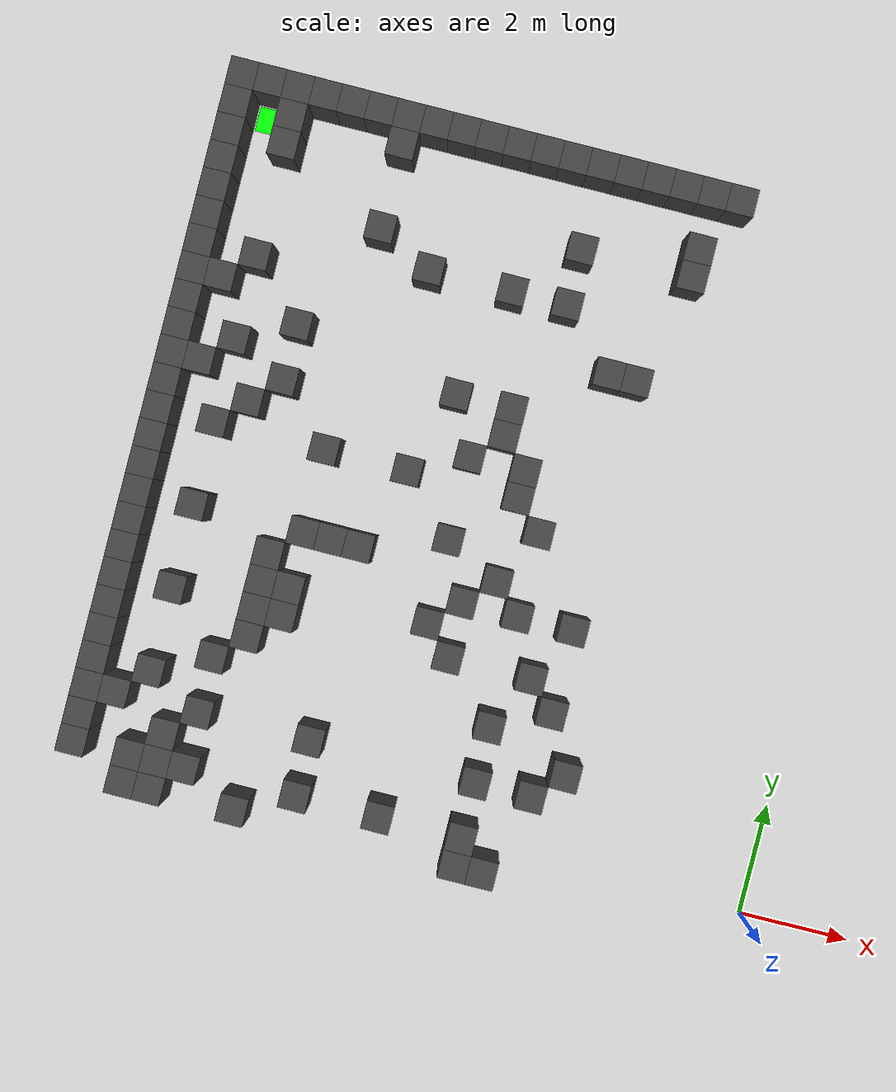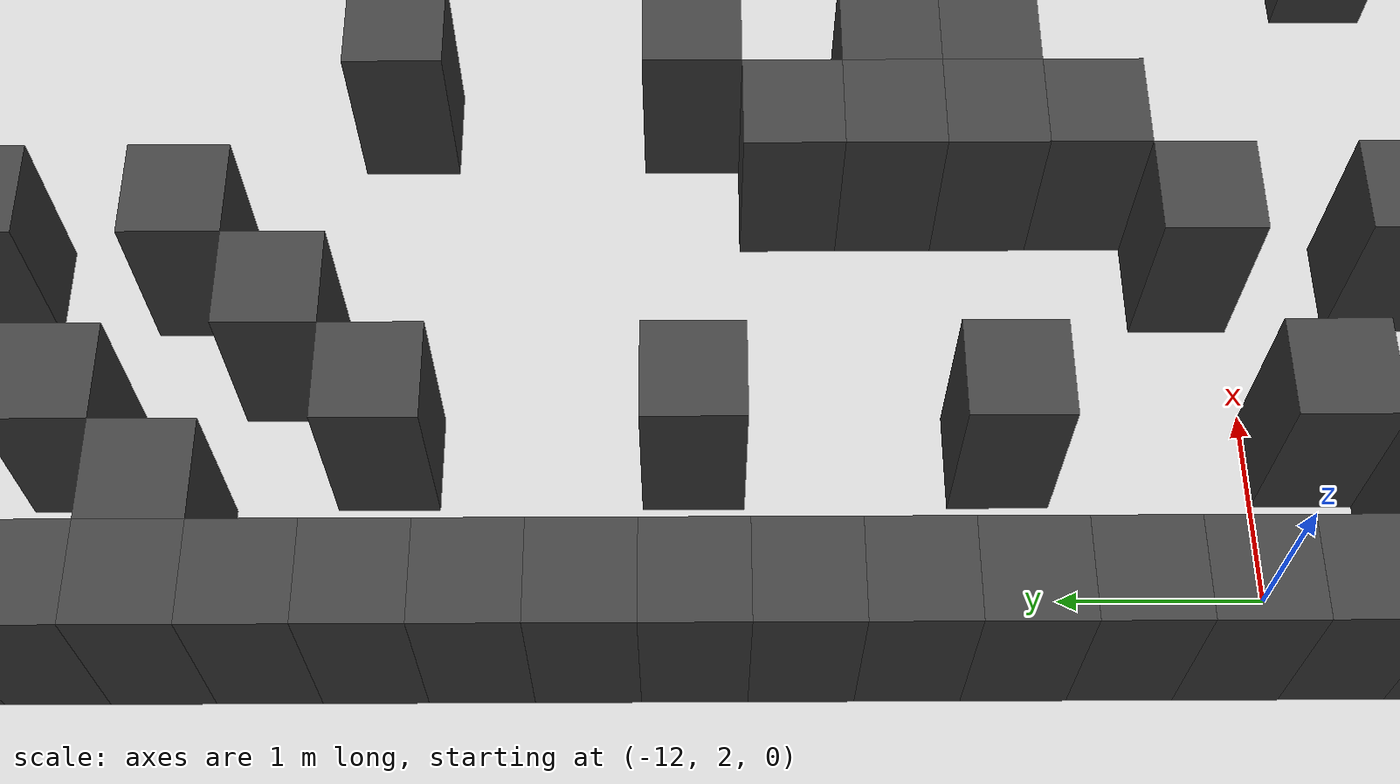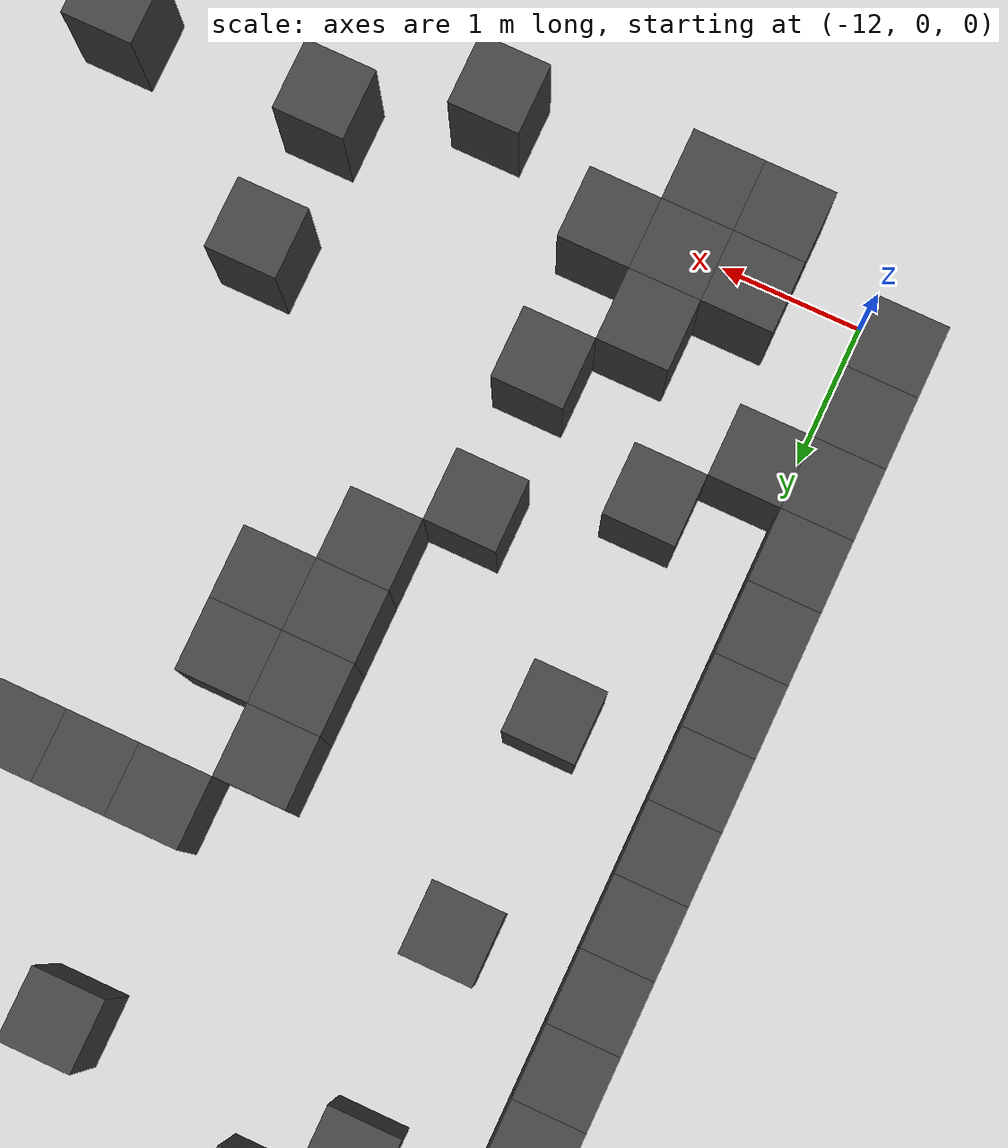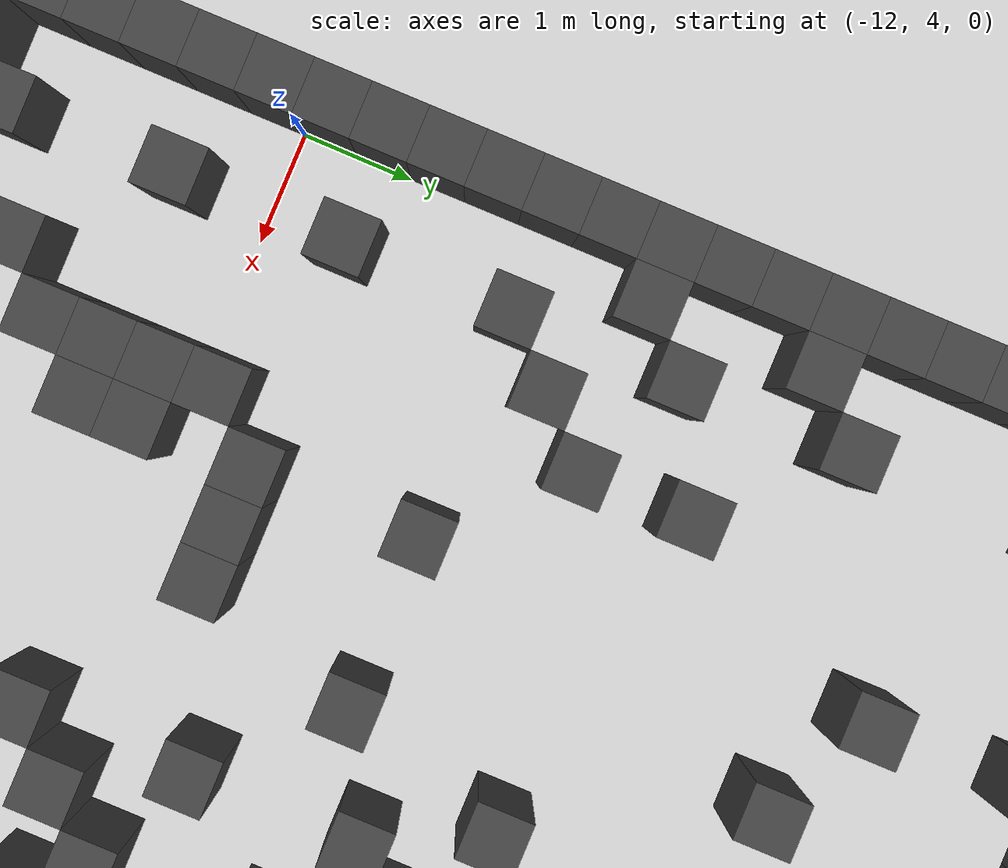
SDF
<sdf version="1.7">
 <world name="map_3200">
  <model name="ground_plane">
   <static>true</static>
   <link name="link">
    <collision name="collision">
     <geometry><plane><normal>0 0 1</normal><size>200 200</size></plane></geometry>
    </collision>
    <visual name="visual">
     <geometry><plane><normal>0 0 1</normal><size>200 200</size></plane></geometry>
     <material><ambient>0.8 0.8 0.8 1</ambient><diffuse>0.8 0.8 0.8 1</diffuse></material>
    </visual>
   </link>
  </model>
  <model name="maze_environment">
   <static>true</static>
   <link name="wall_0">
    <pose>-12.250 12.250 0.500 0 0 0</pose>
    <collision name="col"><geometry><box><size>0.5 0.5 1.0</size></box></geometry></collision>
    <visual name="vis">
     <geometry><box><size>0.5 0.5 1.0</size></box></geometry>
     <material><ambient>0.15 0.15 0.15 1</ambient><diffuse>0.25 0.25 0.25 1</diffuse></material>
    </visual>
   </link>
   <link name="wall_1">
    <pose>-11.750 12.250 0.500 0 0 0</pose>
    <collision name="col"><geometry><box><size>0.5 0.5 1.0</size></box></geometry></collision>
    <visual name="vis">
     <geometry><box><size>0.5 0.5 1.0</size></box></geometry>
     <material><ambient>0.15 0.15 0.15 1</ambient><diffuse>0.25 0.25 0.25 1</diffuse></material>
    </visual>
   </link>
   <link name="wall_2">
    <pose>-11.250 12.250 0.500 0 0 0</pose>
    <collision name="col"><geometry><box><size>0.5 0.5 1.0</size></box></geometry></collision>
    <visual name="vis">
     <geometry><box><size>0.5 0.5 1.0</size></box></geometry>
     <material><ambient>0.15 0.15 0.15 1</ambient><diffuse>0.25 0.25 0.25 1</diffuse></material>
    </visual>
   </link>
   <link name="wall_3">
    <pose>-10.750 12.250 0.500 0 0 0</pose>
    <collision name="col"><geometry><box><size>0.5 0.5 1.0</size></box></geometry></collision>
    <visual name="vis">
     <geometry><box><size>0.5 0.5 1.0</size></box></geometry>
     <material><ambient>0.15 0.15 0.15 1</ambient><diffuse>0.25 0.25 0.25 1</diffuse></material>
    </visual>
   </link>
   <link name="wall_4">
    <pose>-10.250 12.250 0.500 0 0 0</pose>
    <collision name="col"><geometry><box><size>0.5 0.5 1.0</size></box></geometry></collision>
    <visual name="vis">
     <geometry><box><size>0.5 0.5 1.0</size></box></geometry>
     <material><ambient>0.15 0.15 0.15 1</ambient><diffuse>0.25 0.25 0.25 1</diffuse></material>
    </visual>
   </link>
   <link name="wall_5">
    <pose>-9.750 12.250 0.500 0 0 0</pose>
    <collision name="col"><geometry><box><size>0.5 0.5 1.0</size></box></geometry></collision>
    <visual name="vis">
     <geometry><box><size>0.5 0.5 1.0</size></box></geometry>
     <material><ambient>0.15 0.15 0.15 1</ambient><diffuse>0.25 0.25 0.25 1</diffuse></material>
    </visual>
   </link>
   <link name="wall_6">
    <pose>-9.250 12.250 0.500 0 0 0</pose>
    <collision name="col"><geometry><box><size>0.5 0.5 1.0</size></box></geometry></collision>
    <visual name="vis">
     <geometry><box><size>0.5 0.5 1.0</size></box></geometry>
     <material><ambient>0.15 0.15 0.15 1</ambient><diffuse>0.25 0.25 0.25 1</diffuse></material>
    </visual>
   </link>
   <link name="wall_7">
    <pose>-8.750 12.250 0.500 0 0 0</pose>
    <collision name="col"><geometry><box><size>0.5 0.5 1.0</size></box></geometry></collision>
    <visual name="vis">
     <geometry><box><size>0.5 0.5 1.0</size></box></geometry>
     <material><ambient>0.15 0.15 0.15 1</ambient><diffuse>0.25 0.25 0.25 1</diffuse></material>
    </visual>
   </link>
   <link name="wall_8">
    <pose>-8.250 12.250 0.500 0 0 0</pose>
    <collision name="col"><geometry><box><size>0.5 0.5 1.0</size></box></geometry></collision>
    <visual name="vis">
     <geometry><box><size>0.5 0.5 1.0</size></box></geometry>
     <material><ambient>0.15 0.15 0.15 1</ambient><diffuse>0.25 0.25 0.25 1</diffuse></material>
    </visual>
   </link>
   <link name="wall_9">
    <pose>-7.750 12.250 0.500 0 0 0</pose>
    <collision name="col"><geometry><box><size>0.5 0.5 1.0</size></box></geometry></collision>
    <visual name="vis">
     <geometry><box><size>0.5 0.5 1.0</size></box></geometry>
     <material><ambient>0.15 0.15 0.15 1</ambient><diffuse>0.25 0.25 0.25 1</diffuse></material>
    </visual>
   </link>
   <link name="wall_10">
    <pose>-7.250 12.250 0.500 0 0 0</pose>
    <collision name="col"><geometry><box><size>0.5 0.5 1.0</size></box></geometry></collision>
    <visual name="vis">
     <geometry><box><size>0.5 0.5 1.0</size></box></geometry>
     <material><ambient>0.15 0.15 0.15 1</ambient><diffuse>0.25 0.25 0.25 1</diffuse></material>
    </visual>
   </link>
   <link name="wall_11">
    <pose>-6.750 12.250 0.500 0 0 0</pose>
    <collision name="col"><geometry><box><size>0.5 0.5 1.0</size></box></geometry></collision>
    <visual name="vis">
     <geometry><box><size>0.5 0.5 1.0</size></box></geometry>
     <material><ambient>0.15 0.15 0.15 1</ambient><diffuse>0.25 0.25 0.25 1</diffuse></material>
    </visual>
   </link>
   <link name="wall_12">
    <pose>-6.250 12.250 0.500 0 0 0</pose>
    <collision name="col"><geometry><box><size>0.5 0.5 1.0</size></box></geometry></collision>
    <visual name="vis">
     <geometry><box><size>0.5 0.5 1.0</size></box></geometry>
     <material><ambient>0.15 0.15 0.15 1</ambient><diffuse>0.25 0.25 0.25 1</diffuse></material>
    </visual>
   </link>
   <link name="wall_13">
    <pose>-5.750 12.250 0.500 0 0 0</pose>
    <collision name="col"><geometry><box><size>0.5 0.5 1.0</size></box></geometry></collision>
    <visual name="vis">
     <geometry><box><size>0.5 0.5 1.0</size></box></geometry>
     <material><ambient>0.15 0.15 0.15 1</ambient><diffuse>0.25 0.25 0.25 1</diffuse></material>
    </visual>
   </link>
   <link name="wall_14">
    <pose>-5.250 12.250 0.500 0 0 0</pose>
    <collision name="col"><geometry><box><size>0.5 0.5 1.0</size></box></geometry></collision>
    <visual name="vis">
     <geometry><box><size>0.5 0.5 1.0</size></box></geometry>
     <material><ambient>0.15 0.15 0.15 1</ambient><diffuse>0.25 0.25 0.25 1</diffuse></material>
    </visual>
   </link>
   <link name="wall_15">
    <pose>-4.750 12.250 0.500 0 0 0</pose>
    <collision name="col"><geometry><box><size>0.5 0.5 1.0</size></box></geometry></collision>
    <visual name="vis">
     <geometry><box><size>0.5 0.5 1.0</size></box></geometry>
     <material><ambient>0.15 0.15 0.15 1</ambient><diffuse>0.25 0.25 0.25 1</diffuse></material>
    </visual>
   </link>
   <link name="wall_16">
    <pose>-4.250 12.250 0.500 0 0 0</pose>
    <collision name="col"><geometry><box><size>0.5 0.5 1.0</size></box></geometry></collision>
    <visual name="vis">
     <geometry><box><size>0.5 0.5 1.0</size></box></geometry>
     <material><ambient>0.15 0.15 0.15 1</ambient><diffuse>0.25 0.25 0.25 1</diffuse></material>
    </visual>
   </link>
   <link name="wall_17">
    <pose>-3.750 12.250 0.500 0 0 0</pose>
    <collision name="col"><geometry><box><size>0.5 0.5 1.0</size></box></geometry></collision>
    <visual name="vis">
     <geometry><box><size>0.5 0.5 1.0</size></box></geometry>
     <material><ambient>0.15 0.15 0.15 1</ambient><diffuse>0.25 0.25 0.25 1</diffuse></material>
    </visual>
   </link>
   <link name="wall_18">
    <pose>-3.250 12.250 0.500 0 0 0</pose>
    <collision name="col"><geometry><box><size>0.5 0.5 1.0</size></box></geometry></collision>
    <visual name="vis">
     <geometry><box><size>0.5 0.5 1.0</size></box></geometry>
     <material><ambient>0.15 0.15 0.15 1</ambient><diffuse>0.25 0.25 0.25 1</diffuse></material>
    </visual>
   </link>
   <link name="wall_50">
    <pose>-12.250 11.750 0.500 0 0 0</pose>
    <collision name="col"><geometry><box><size>0.5 0.5 1.0</size></box></geometry></collision>
    <visual name="vis">
     <geometry><box><size>0.5 0.5 1.0</size></box></geometry>
     <material><ambient>0.15 0.15 0.15 1</ambient><diffuse>0.25 0.25 0.25 1</diffuse></material>
    </visual>
   </link>
   <link name="wall_51">
    <pose>-11.250 11.750 0.500 0 0 0</pose>
    <collision name="col"><geometry><box><size>0.5 0.5 1.0</size></box></geometry></collision>
    <visual name="vis">
     <geometry><box><size>0.5 0.5 1.0</size></box></geometry>
     <material><ambient>0.15 0.15 0.15 1</ambient><diffuse>0.25 0.25 0.25 1</diffuse></material>
    </visual>
   </link>
   <link name="wall_52">
    <pose>-9.250 11.750 0.500 0 0 0</pose>
    <collision name="col"><geometry><box><size>0.5 0.5 1.0</size></box></geometry></collision>
    <visual name="vis">
     <geometry><box><size>0.5 0.5 1.0</size></box></geometry>
     <material><ambient>0.15 0.15 0.15 1</ambient><diffuse>0.25 0.25 0.25 1</diffuse></material>
    </visual>
   </link>
   <link name="wall_61">
    <pose>-12.250 11.250 0.500 0 0 0</pose>
    <collision name="col"><geometry><box><size>0.5 0.5 1.0</size></box></geometry></collision>
    <visual name="vis">
     <geometry><box><size>0.5 0.5 1.0</size></box></geometry>
     <material><ambient>0.15 0.15 0.15 1</ambient><diffuse>0.25 0.25 0.25 1</diffuse></material>
    </visual>
   </link>
   <link name="wall_62">
    <pose>-11.250 11.250 0.500 0 0 0</pose>
    <collision name="col"><geometry><box><size>0.5 0.5 1.0</size></box></geometry></collision>
    <visual name="vis">
     <geometry><box><size>0.5 0.5 1.0</size></box></geometry>
     <material><ambient>0.15 0.15 0.15 1</ambient><diffuse>0.25 0.25 0.25 1</diffuse></material>
    </visual>
   </link>
   <link name="wall_63">
    <pose>-3.750 11.250 0.500 0 0 0</pose>
    <collision name="col"><geometry><box><size>0.5 0.5 1.0</size></box></geometry></collision>
    <visual name="vis">
     <geometry><box><size>0.5 0.5 1.0</size></box></geometry>
     <material><ambient>0.15 0.15 0.15 1</ambient><diffuse>0.25 0.25 0.25 1</diffuse></material>
    </visual>
   </link>
   <link name="wall_68">
    <pose>-12.250 10.750 0.500 0 0 0</pose>
    <collision name="col"><geometry><box><size>0.5 0.5 1.0</size></box></geometry></collision>
    <visual name="vis">
     <geometry><box><size>0.5 0.5 1.0</size></box></geometry>
     <material><ambient>0.15 0.15 0.15 1</ambient><diffuse>0.25 0.25 0.25 1</diffuse></material>
    </visual>
   </link>
   <link name="wall_69">
    <pose>-5.750 10.750 0.500 0 0 0</pose>
    <collision name="col"><geometry><box><size>0.5 0.5 1.0</size></box></geometry></collision>
    <visual name="vis">
     <geometry><box><size>0.5 0.5 1.0</size></box></geometry>
     <material><ambient>0.15 0.15 0.15 1</ambient><diffuse>0.25 0.25 0.25 1</diffuse></material>
    </visual>
   </link>
   <link name="wall_70">
    <pose>-3.750 10.750 0.500 0 0 0</pose>
    <collision name="col"><geometry><box><size>0.5 0.5 1.0</size></box></geometry></collision>
    <visual name="vis">
     <geometry><box><size>0.5 0.5 1.0</size></box></geometry>
     <material><ambient>0.15 0.15 0.15 1</ambient><diffuse>0.25 0.25 0.25 1</diffuse></material>
    </visual>
   </link>
   <link name="wall_81">
    <pose>-12.250 10.250 0.500 0 0 0</pose>
    <collision name="col"><geometry><box><size>0.5 0.5 1.0</size></box></geometry></collision>
    <visual name="vis">
     <geometry><box><size>0.5 0.5 1.0</size></box></geometry>
     <material><ambient>0.15 0.15 0.15 1</ambient><diffuse>0.25 0.25 0.25 1</diffuse></material>
    </visual>
   </link>
   <link name="wall_82">
    <pose>-9.250 10.250 0.500 0 0 0</pose>
    <collision name="col"><geometry><box><size>0.5 0.5 1.0</size></box></geometry></collision>
    <visual name="vis">
     <geometry><box><size>0.5 0.5 1.0</size></box></geometry>
     <material><ambient>0.15 0.15 0.15 1</ambient><diffuse>0.25 0.25 0.25 1</diffuse></material>
    </visual>
   </link>
   <link name="wall_85">
    <pose>-12.250 9.750 0.500 0 0 0</pose>
    <collision name="col"><geometry><box><size>0.5 0.5 1.0</size></box></geometry></collision>
    <visual name="vis">
     <geometry><box><size>0.5 0.5 1.0</size></box></geometry>
     <material><ambient>0.15 0.15 0.15 1</ambient><diffuse>0.25 0.25 0.25 1</diffuse></material>
    </visual>
   </link>
   <link name="wall_86">
    <pose>-8.250 9.750 0.500 0 0 0</pose>
    <collision name="col"><geometry><box><size>0.5 0.5 1.0</size></box></geometry></collision>
    <visual name="vis">
     <geometry><box><size>0.5 0.5 1.0</size></box></geometry>
     <material><ambient>0.15 0.15 0.15 1</ambient><diffuse>0.25 0.25 0.25 1</diffuse></material>
    </visual>
   </link>
   <link name="wall_87">
    <pose>-6.750 9.750 0.500 0 0 0</pose>
    <collision name="col"><geometry><box><size>0.5 0.5 1.0</size></box></geometry></collision>
    <visual name="vis">
     <geometry><box><size>0.5 0.5 1.0</size></box></geometry>
     <material><ambient>0.15 0.15 0.15 1</ambient><diffuse>0.25 0.25 0.25 1</diffuse></material>
    </visual>
   </link>
   <link name="wall_88">
    <pose>-5.750 9.750 0.500 0 0 0</pose>
    <collision name="col"><geometry><box><size>0.5 0.5 1.0</size></box></geometry></collision>
    <visual name="vis">
     <geometry><box><size>0.5 0.5 1.0</size></box></geometry>
     <material><ambient>0.15 0.15 0.15 1</ambient><diffuse>0.25 0.25 0.25 1</diffuse></material>
    </visual>
   </link>
   <link name="wall_96">
    <pose>-12.250 9.250 0.500 0 0 0</pose>
    <collision name="col"><geometry><box><size>0.5 0.5 1.0</size></box></geometry></collision>
    <visual name="vis">
     <geometry><box><size>0.5 0.5 1.0</size></box></geometry>
     <material><ambient>0.15 0.15 0.15 1</ambient><diffuse>0.25 0.25 0.25 1</diffuse></material>
    </visual>
   </link>
   <link name="wall_97">
    <pose>-11.250 9.250 0.500 0 0 0</pose>
    <collision name="col"><geometry><box><size>0.5 0.5 1.0</size></box></geometry></collision>
    <visual name="vis">
     <geometry><box><size>0.5 0.5 1.0</size></box></geometry>
     <material><ambient>0.15 0.15 0.15 1</ambient><diffuse>0.25 0.25 0.25 1</diffuse></material>
    </visual>
   </link>
   <link name="wall_106">
    <pose>-12.250 8.750 0.500 0 0 0</pose>
    <collision name="col"><geometry><box><size>0.5 0.5 1.0</size></box></geometry></collision>
    <visual name="vis">
     <geometry><box><size>0.5 0.5 1.0</size></box></geometry>
     <material><ambient>0.15 0.15 0.15 1</ambient><diffuse>0.25 0.25 0.25 1</diffuse></material>
    </visual>
   </link>
   <link name="wall_107">
    <pose>-11.750 8.750 0.500 0 0 0</pose>
    <collision name="col"><geometry><box><size>0.5 0.5 1.0</size></box></geometry></collision>
    <visual name="vis">
     <geometry><box><size>0.5 0.5 1.0</size></box></geometry>
     <material><ambient>0.15 0.15 0.15 1</ambient><diffuse>0.25 0.25 0.25 1</diffuse></material>
    </visual>
   </link>
   <link name="wall_108">
    <pose>-4.750 8.750 0.500 0 0 0</pose>
    <collision name="col"><geometry><box><size>0.5 0.5 1.0</size></box></geometry></collision>
    <visual name="vis">
     <geometry><box><size>0.5 0.5 1.0</size></box></geometry>
     <material><ambient>0.15 0.15 0.15 1</ambient><diffuse>0.25 0.25 0.25 1</diffuse></material>
    </visual>
   </link>
   <link name="wall_109">
    <pose>-4.250 8.750 0.500 0 0 0</pose>
    <collision name="col"><geometry><box><size>0.5 0.5 1.0</size></box></geometry></collision>
    <visual name="vis">
     <geometry><box><size>0.5 0.5 1.0</size></box></geometry>
     <material><ambient>0.15 0.15 0.15 1</ambient><diffuse>0.25 0.25 0.25 1</diffuse></material>
    </visual>
   </link>
   <link name="wall_115">
    <pose>-12.250 8.250 0.500 0 0 0</pose>
    <collision name="col"><geometry><box><size>0.5 0.5 1.0</size></box></geometry></collision>
    <visual name="vis">
     <geometry><box><size>0.5 0.5 1.0</size></box></geometry>
     <material><ambient>0.15 0.15 0.15 1</ambient><diffuse>0.25 0.25 0.25 1</diffuse></material>
    </visual>
   </link>
   <link name="wall_116">
    <pose>-10.250 8.250 0.500 0 0 0</pose>
    <collision name="col"><geometry><box><size>0.5 0.5 1.0</size></box></geometry></collision>
    <visual name="vis">
     <geometry><box><size>0.5 0.5 1.0</size></box></geometry>
     <material><ambient>0.15 0.15 0.15 1</ambient><diffuse>0.25 0.25 0.25 1</diffuse></material>
    </visual>
   </link>
   <link name="wall_124">
    <pose>-12.250 7.750 0.500 0 0 0</pose>
    <collision name="col"><geometry><box><size>0.5 0.5 1.0</size></box></geometry></collision>
    <visual name="vis">
     <geometry><box><size>0.5 0.5 1.0</size></box></geometry>
     <material><ambient>0.15 0.15 0.15 1</ambient><diffuse>0.25 0.25 0.25 1</diffuse></material>
    </visual>
   </link>
   <link name="wall_125">
    <pose>-11.250 7.750 0.500 0 0 0</pose>
    <collision name="col"><geometry><box><size>0.5 0.5 1.0</size></box></geometry></collision>
    <visual name="vis">
     <geometry><box><size>0.5 0.5 1.0</size></box></geometry>
     <material><ambient>0.15 0.15 0.15 1</ambient><diffuse>0.25 0.25 0.25 1</diffuse></material>
    </visual>
   </link>
   <link name="wall_126">
    <pose>-7.250 7.750 0.500 0 0 0</pose>
    <collision name="col"><geometry><box><size>0.5 0.5 1.0</size></box></geometry></collision>
    <visual name="vis">
     <geometry><box><size>0.5 0.5 1.0</size></box></geometry>
     <material><ambient>0.15 0.15 0.15 1</ambient><diffuse>0.25 0.25 0.25 1</diffuse></material>
    </visual>
   </link>
   <link name="wall_127">
    <pose>-6.250 7.750 0.500 0 0 0</pose>
    <collision name="col"><geometry><box><size>0.5 0.5 1.0</size></box></geometry></collision>
    <visual name="vis">
     <geometry><box><size>0.5 0.5 1.0</size></box></geometry>
     <material><ambient>0.15 0.15 0.15 1</ambient><diffuse>0.25 0.25 0.25 1</diffuse></material>
    </visual>
   </link>
   <link name="wall_132">
    <pose>-12.250 7.250 0.500 0 0 0</pose>
    <collision name="col"><geometry><box><size>0.5 0.5 1.0</size></box></geometry></collision>
    <visual name="vis">
     <geometry><box><size>0.5 0.5 1.0</size></box></geometry>
     <material><ambient>0.15 0.15 0.15 1</ambient><diffuse>0.25 0.25 0.25 1</diffuse></material>
    </visual>
   </link>
   <link name="wall_133">
    <pose>-11.750 7.250 0.500 0 0 0</pose>
    <collision name="col"><geometry><box><size>0.5 0.5 1.0</size></box></geometry></collision>
    <visual name="vis">
     <geometry><box><size>0.5 0.5 1.0</size></box></geometry>
     <material><ambient>0.15 0.15 0.15 1</ambient><diffuse>0.25 0.25 0.25 1</diffuse></material>
    </visual>
   </link>
   <link name="wall_134">
    <pose>-10.250 7.250 0.500 0 0 0</pose>
    <collision name="col"><geometry><box><size>0.5 0.5 1.0</size></box></geometry></collision>
    <visual name="vis">
     <geometry><box><size>0.5 0.5 1.0</size></box></geometry>
     <material><ambient>0.15 0.15 0.15 1</ambient><diffuse>0.25 0.25 0.25 1</diffuse></material>
    </visual>
   </link>
   <link name="wall_135">
    <pose>-6.250 7.250 0.500 0 0 0</pose>
    <collision name="col"><geometry><box><size>0.5 0.5 1.0</size></box></geometry></collision>
    <visual name="vis">
     <geometry><box><size>0.5 0.5 1.0</size></box></geometry>
     <material><ambient>0.15 0.15 0.15 1</ambient><diffuse>0.25 0.25 0.25 1</diffuse></material>
    </visual>
   </link>
   <link name="wall_141">
    <pose>-12.250 6.750 0.500 0 0 0</pose>
    <collision name="col"><geometry><box><size>0.5 0.5 1.0</size></box></geometry></collision>
    <visual name="vis">
     <geometry><box><size>0.5 0.5 1.0</size></box></geometry>
     <material><ambient>0.15 0.15 0.15 1</ambient><diffuse>0.25 0.25 0.25 1</diffuse></material>
    </visual>
   </link>
   <link name="wall_142">
    <pose>-10.750 6.750 0.500 0 0 0</pose>
    <collision name="col"><geometry><box><size>0.5 0.5 1.0</size></box></geometry></collision>
    <visual name="vis">
     <geometry><box><size>0.5 0.5 1.0</size></box></geometry>
     <material><ambient>0.15 0.15 0.15 1</ambient><diffuse>0.25 0.25 0.25 1</diffuse></material>
    </visual>
   </link>
   <link name="wall_143">
    <pose>-6.750 6.750 0.500 0 0 0</pose>
    <collision name="col"><geometry><box><size>0.5 0.5 1.0</size></box></geometry></collision>
    <visual name="vis">
     <geometry><box><size>0.5 0.5 1.0</size></box></geometry>
     <material><ambient>0.15 0.15 0.15 1</ambient><diffuse>0.25 0.25 0.25 1</diffuse></material>
    </visual>
   </link>
   <link name="wall_144">
    <pose>-5.750 6.750 0.500 0 0 0</pose>
    <collision name="col"><geometry><box><size>0.5 0.5 1.0</size></box></geometry></collision>
    <visual name="vis">
     <geometry><box><size>0.5 0.5 1.0</size></box></geometry>
     <material><ambient>0.15 0.15 0.15 1</ambient><diffuse>0.25 0.25 0.25 1</diffuse></material>
    </visual>
   </link>
   <link name="wall_151">
    <pose>-12.250 6.250 0.500 0 0 0</pose>
    <collision name="col"><geometry><box><size>0.5 0.5 1.0</size></box></geometry></collision>
    <visual name="vis">
     <geometry><box><size>0.5 0.5 1.0</size></box></geometry>
     <material><ambient>0.15 0.15 0.15 1</ambient><diffuse>0.25 0.25 0.25 1</diffuse></material>
    </visual>
   </link>
   <link name="wall_152">
    <pose>-11.250 6.250 0.500 0 0 0</pose>
    <collision name="col"><geometry><box><size>0.5 0.5 1.0</size></box></geometry></collision>
    <visual name="vis">
     <geometry><box><size>0.5 0.5 1.0</size></box></geometry>
     <material><ambient>0.15 0.15 0.15 1</ambient><diffuse>0.25 0.25 0.25 1</diffuse></material>
    </visual>
   </link>
   <link name="wall_153">
    <pose>-9.250 6.250 0.500 0 0 0</pose>
    <collision name="col"><geometry><box><size>0.5 0.5 1.0</size></box></geometry></collision>
    <visual name="vis">
     <geometry><box><size>0.5 0.5 1.0</size></box></geometry>
     <material><ambient>0.15 0.15 0.15 1</ambient><diffuse>0.25 0.25 0.25 1</diffuse></material>
    </visual>
   </link>
   <link name="wall_154">
    <pose>-7.750 6.250 0.500 0 0 0</pose>
    <collision name="col"><geometry><box><size>0.5 0.5 1.0</size></box></geometry></collision>
    <visual name="vis">
     <geometry><box><size>0.5 0.5 1.0</size></box></geometry>
     <material><ambient>0.15 0.15 0.15 1</ambient><diffuse>0.25 0.25 0.25 1</diffuse></material>
    </visual>
   </link>
   <link name="wall_155">
    <pose>-5.750 6.250 0.500 0 0 0</pose>
    <collision name="col"><geometry><box><size>0.5 0.5 1.0</size></box></geometry></collision>
    <visual name="vis">
     <geometry><box><size>0.5 0.5 1.0</size></box></geometry>
     <material><ambient>0.15 0.15 0.15 1</ambient><diffuse>0.25 0.25 0.25 1</diffuse></material>
    </visual>
   </link>
   <link name="wall_161">
    <pose>-12.250 5.750 0.500 0 0 0</pose>
    <collision name="col"><geometry><box><size>0.5 0.5 1.0</size></box></geometry></collision>
    <visual name="vis">
     <geometry><box><size>0.5 0.5 1.0</size></box></geometry>
     <material><ambient>0.15 0.15 0.15 1</ambient><diffuse>0.25 0.25 0.25 1</diffuse></material>
    </visual>
   </link>
   <link name="wall_162">
    <pose>-5.250 5.750 0.500 0 0 0</pose>
    <collision name="col"><geometry><box><size>0.5 0.5 1.0</size></box></geometry></collision>
    <visual name="vis">
     <geometry><box><size>0.5 0.5 1.0</size></box></geometry>
     <material><ambient>0.15 0.15 0.15 1</ambient><diffuse>0.25 0.25 0.25 1</diffuse></material>
    </visual>
   </link>
   <link name="wall_166">
    <pose>-12.250 5.250 0.500 0 0 0</pose>
    <collision name="col"><geometry><box><size>0.5 0.5 1.0</size></box></geometry></collision>
    <visual name="vis">
     <geometry><box><size>0.5 0.5 1.0</size></box></geometry>
     <material><ambient>0.15 0.15 0.15 1</ambient><diffuse>0.25 0.25 0.25 1</diffuse></material>
    </visual>
   </link>
   <link name="wall_167">
    <pose>-6.750 5.250 0.500 0 0 0</pose>
    <collision name="col"><geometry><box><size>0.5 0.5 1.0</size></box></geometry></collision>
    <visual name="vis">
     <geometry><box><size>0.5 0.5 1.0</size></box></geometry>
     <material><ambient>0.15 0.15 0.15 1</ambient><diffuse>0.25 0.25 0.25 1</diffuse></material>
    </visual>
   </link>
   <link name="wall_174">
    <pose>-12.250 4.750 0.500 0 0 0</pose>
    <collision name="col"><geometry><box><size>0.5 0.5 1.0</size></box></geometry></collision>
    <visual name="vis">
     <geometry><box><size>0.5 0.5 1.0</size></box></geometry>
     <material><ambient>0.15 0.15 0.15 1</ambient><diffuse>0.25 0.25 0.25 1</diffuse></material>
    </visual>
   </link>
   <link name="wall_175">
    <pose>-11.250 4.750 0.500 0 0 0</pose>
    <collision name="col"><geometry><box><size>0.5 0.5 1.0</size></box></geometry></collision>
    <visual name="vis">
     <geometry><box><size>0.5 0.5 1.0</size></box></geometry>
     <material><ambient>0.15 0.15 0.15 1</ambient><diffuse>0.25 0.25 0.25 1</diffuse></material>
    </visual>
   </link>
   <link name="wall_176">
    <pose>-9.250 4.750 0.500 0 0 0</pose>
    <collision name="col"><geometry><box><size>0.5 0.5 1.0</size></box></geometry></collision>
    <visual name="vis">
     <geometry><box><size>0.5 0.5 1.0</size></box></geometry>
     <material><ambient>0.15 0.15 0.15 1</ambient><diffuse>0.25 0.25 0.25 1</diffuse></material>
    </visual>
   </link>
   <link name="wall_177">
    <pose>-8.750 4.750 0.500 0 0 0</pose>
    <collision name="col"><geometry><box><size>0.5 0.5 1.0</size></box></geometry></collision>
    <visual name="vis">
     <geometry><box><size>0.5 0.5 1.0</size></box></geometry>
     <material><ambient>0.15 0.15 0.15 1</ambient><diffuse>0.25 0.25 0.25 1</diffuse></material>
    </visual>
   </link>
   <link name="wall_178">
    <pose>-8.250 4.750 0.500 0 0 0</pose>
    <collision name="col"><geometry><box><size>0.5 0.5 1.0</size></box></geometry></collision>
    <visual name="vis">
     <geometry><box><size>0.5 0.5 1.0</size></box></geometry>
     <material><ambient>0.15 0.15 0.15 1</ambient><diffuse>0.25 0.25 0.25 1</diffuse></material>
    </visual>
   </link>
   <link name="wall_179">
    <pose>-5.750 4.750 0.500 0 0 0</pose>
    <collision name="col"><geometry><box><size>0.5 0.5 1.0</size></box></geometry></collision>
    <visual name="vis">
     <geometry><box><size>0.5 0.5 1.0</size></box></geometry>
     <material><ambient>0.15 0.15 0.15 1</ambient><diffuse>0.25 0.25 0.25 1</diffuse></material>
    </visual>
   </link>
   <link name="wall_184">
    <pose>-12.250 4.250 0.500 0 0 0</pose>
    <collision name="col"><geometry><box><size>0.5 0.5 1.0</size></box></geometry></collision>
    <visual name="vis">
     <geometry><box><size>0.5 0.5 1.0</size></box></geometry>
     <material><ambient>0.15 0.15 0.15 1</ambient><diffuse>0.25 0.25 0.25 1</diffuse></material>
    </visual>
   </link>
   <link name="wall_185">
    <pose>-9.750 4.250 0.500 0 0 0</pose>
    <collision name="col"><geometry><box><size>0.5 0.5 1.0</size></box></geometry></collision>
    <visual name="vis">
     <geometry><box><size>0.5 0.5 1.0</size></box></geometry>
     <material><ambient>0.15 0.15 0.15 1</ambient><diffuse>0.25 0.25 0.25 1</diffuse></material>
    </visual>
   </link>
   <link name="wall_186">
    <pose>-6.250 4.250 0.500 0 0 0</pose>
    <collision name="col"><geometry><box><size>0.5 0.5 1.0</size></box></geometry></collision>
    <visual name="vis">
     <geometry><box><size>0.5 0.5 1.0</size></box></geometry>
     <material><ambient>0.15 0.15 0.15 1</ambient><diffuse>0.25 0.25 0.25 1</diffuse></material>
    </visual>
   </link>
   <link name="wall_187">
    <pose>-5.250 4.250 0.500 0 0 0</pose>
    <collision name="col"><geometry><box><size>0.5 0.5 1.0</size></box></geometry></collision>
    <visual name="vis">
     <geometry><box><size>0.5 0.5 1.0</size></box></geometry>
     <material><ambient>0.15 0.15 0.15 1</ambient><diffuse>0.25 0.25 0.25 1</diffuse></material>
    </visual>
   </link>
   <link name="wall_188">
    <pose>-4.250 4.250 0.500 0 0 0</pose>
    <collision name="col"><geometry><box><size>0.5 0.5 1.0</size></box></geometry></collision>
    <visual name="vis">
     <geometry><box><size>0.5 0.5 1.0</size></box></geometry>
     <material><ambient>0.15 0.15 0.15 1</ambient><diffuse>0.25 0.25 0.25 1</diffuse></material>
    </visual>
   </link>
   <link name="wall_198">
    <pose>-12.250 3.750 0.500 0 0 0</pose>
    <collision name="col"><geometry><box><size>0.5 0.5 1.0</size></box></geometry></collision>
    <visual name="vis">
     <geometry><box><size>0.5 0.5 1.0</size></box></geometry>
     <material><ambient>0.15 0.15 0.15 1</ambient><diffuse>0.25 0.25 0.25 1</diffuse></material>
    </visual>
   </link>
   <link name="wall_199">
    <pose>-9.750 3.750 0.500 0 0 0</pose>
    <collision name="col"><geometry><box><size>0.5 0.5 1.0</size></box></geometry></collision>
    <visual name="vis">
     <geometry><box><size>0.5 0.5 1.0</size></box></geometry>
     <material><ambient>0.15 0.15 0.15 1</ambient><diffuse>0.25 0.25 0.25 1</diffuse></material>
    </visual>
   </link>
   <link name="wall_200">
    <pose>-9.250 3.750 0.500 0 0 0</pose>
    <collision name="col"><geometry><box><size>0.5 0.5 1.0</size></box></geometry></collision>
    <visual name="vis">
     <geometry><box><size>0.5 0.5 1.0</size></box></geometry>
     <material><ambient>0.15 0.15 0.15 1</ambient><diffuse>0.25 0.25 0.25 1</diffuse></material>
    </visual>
   </link>
   <link name="wall_201">
    <pose>-6.750 3.750 0.500 0 0 0</pose>
    <collision name="col"><geometry><box><size>0.5 0.5 1.0</size></box></geometry></collision>
    <visual name="vis">
     <geometry><box><size>0.5 0.5 1.0</size></box></geometry>
     <material><ambient>0.15 0.15 0.15 1</ambient><diffuse>0.25 0.25 0.25 1</diffuse></material>
    </visual>
   </link>
   <link name="wall_206">
    <pose>-12.250 3.250 0.500 0 0 0</pose>
    <collision name="col"><geometry><box><size>0.5 0.5 1.0</size></box></geometry></collision>
    <visual name="vis">
     <geometry><box><size>0.5 0.5 1.0</size></box></geometry>
     <material><ambient>0.15 0.15 0.15 1</ambient><diffuse>0.25 0.25 0.25 1</diffuse></material>
    </visual>
   </link>
   <link name="wall_207">
    <pose>-11.250 3.250 0.500 0 0 0</pose>
    <collision name="col"><geometry><box><size>0.5 0.5 1.0</size></box></geometry></collision>
    <visual name="vis">
     <geometry><box><size>0.5 0.5 1.0</size></box></geometry>
     <material><ambient>0.15 0.15 0.15 1</ambient><diffuse>0.25 0.25 0.25 1</diffuse></material>
    </visual>
   </link>
   <link name="wall_208">
    <pose>-9.750 3.250 0.500 0 0 0</pose>
    <collision name="col"><geometry><box><size>0.5 0.5 1.0</size></box></geometry></collision>
    <visual name="vis">
     <geometry><box><size>0.5 0.5 1.0</size></box></geometry>
     <material><ambient>0.15 0.15 0.15 1</ambient><diffuse>0.25 0.25 0.25 1</diffuse></material>
    </visual>
   </link>
   <link name="wall_209">
    <pose>-9.250 3.250 0.500 0 0 0</pose>
    <collision name="col"><geometry><box><size>0.5 0.5 1.0</size></box></geometry></collision>
    <visual name="vis">
     <geometry><box><size>0.5 0.5 1.0</size></box></geometry>
     <material><ambient>0.15 0.15 0.15 1</ambient><diffuse>0.25 0.25 0.25 1</diffuse></material>
    </visual>
   </link>
   <link name="wall_210">
    <pose>-6.250 3.250 0.500 0 0 0</pose>
    <collision name="col"><geometry><box><size>0.5 0.5 1.0</size></box></geometry></collision>
    <visual name="vis">
     <geometry><box><size>0.5 0.5 1.0</size></box></geometry>
     <material><ambient>0.15 0.15 0.15 1</ambient><diffuse>0.25 0.25 0.25 1</diffuse></material>
    </visual>
   </link>
   <link name="wall_211">
    <pose>-4.750 3.250 0.500 0 0 0</pose>
    <collision name="col"><geometry><box><size>0.5 0.5 1.0</size></box></geometry></collision>
    <visual name="vis">
     <geometry><box><size>0.5 0.5 1.0</size></box></geometry>
     <material><ambient>0.15 0.15 0.15 1</ambient><diffuse>0.25 0.25 0.25 1</diffuse></material>
    </visual>
   </link>
   <link name="wall_218">
    <pose>-12.250 2.750 0.500 0 0 0</pose>
    <collision name="col"><geometry><box><size>0.5 0.5 1.0</size></box></geometry></collision>
    <visual name="vis">
     <geometry><box><size>0.5 0.5 1.0</size></box></geometry>
     <material><ambient>0.15 0.15 0.15 1</ambient><diffuse>0.25 0.25 0.25 1</diffuse></material>
    </visual>
   </link>
   <link name="wall_219">
    <pose>-9.750 2.750 0.500 0 0 0</pose>
    <collision name="col"><geometry><box><size>0.5 0.5 1.0</size></box></geometry></collision>
    <visual name="vis">
     <geometry><box><size>0.5 0.5 1.0</size></box></geometry>
     <material><ambient>0.15 0.15 0.15 1</ambient><diffuse>0.25 0.25 0.25 1</diffuse></material>
    </visual>
   </link>
   <link name="wall_220">
    <pose>-4.250 2.750 0.500 0 0 0</pose>
    <collision name="col"><geometry><box><size>0.5 0.5 1.0</size></box></geometry></collision>
    <visual name="vis">
     <geometry><box><size>0.5 0.5 1.0</size></box></geometry>
     <material><ambient>0.15 0.15 0.15 1</ambient><diffuse>0.25 0.25 0.25 1</diffuse></material>
    </visual>
   </link>
   <link name="wall_229">
    <pose>-12.250 2.250 0.500 0 0 0</pose>
    <collision name="col"><geometry><box><size>0.5 0.5 1.0</size></box></geometry></collision>
    <visual name="vis">
     <geometry><box><size>0.5 0.5 1.0</size></box></geometry>
     <material><ambient>0.15 0.15 0.15 1</ambient><diffuse>0.25 0.25 0.25 1</diffuse></material>
    </visual>
   </link>
   <link name="wall_230">
    <pose>-10.250 2.250 0.500 0 0 0</pose>
    <collision name="col"><geometry><box><size>0.5 0.5 1.0</size></box></geometry></collision>
    <visual name="vis">
     <geometry><box><size>0.5 0.5 1.0</size></box></geometry>
     <material><ambient>0.15 0.15 0.15 1</ambient><diffuse>0.25 0.25 0.25 1</diffuse></material>
    </visual>
   </link>
   <link name="wall_231">
    <pose>-5.250 2.250 0.500 0 0 0</pose>
    <collision name="col"><geometry><box><size>0.5 0.5 1.0</size></box></geometry></collision>
    <visual name="vis">
     <geometry><box><size>0.5 0.5 1.0</size></box></geometry>
     <material><ambient>0.15 0.15 0.15 1</ambient><diffuse>0.25 0.25 0.25 1</diffuse></material>
    </visual>
   </link>
   <link name="wall_236">
    <pose>-12.250 1.750 0.500 0 0 0</pose>
    <collision name="col"><geometry><box><size>0.5 0.5 1.0</size></box></geometry></collision>
    <visual name="vis">
     <geometry><box><size>0.5 0.5 1.0</size></box></geometry>
     <material><ambient>0.15 0.15 0.15 1</ambient><diffuse>0.25 0.25 0.25 1</diffuse></material>
    </visual>
   </link>
   <link name="wall_237">
    <pose>-11.250 1.750 0.500 0 0 0</pose>
    <collision name="col"><geometry><box><size>0.5 0.5 1.0</size></box></geometry></collision>
    <visual name="vis">
     <geometry><box><size>0.5 0.5 1.0</size></box></geometry>
     <material><ambient>0.15 0.15 0.15 1</ambient><diffuse>0.25 0.25 0.25 1</diffuse></material>
    </visual>
   </link>
   <link name="wall_238">
    <pose>-3.750 1.750 0.500 0 0 0</pose>
    <collision name="col"><geometry><box><size>0.5 0.5 1.0</size></box></geometry></collision>
    <visual name="vis">
     <geometry><box><size>0.5 0.5 1.0</size></box></geometry>
     <material><ambient>0.15 0.15 0.15 1</ambient><diffuse>0.25 0.25 0.25 1</diffuse></material>
    </visual>
   </link>
   <link name="wall_244">
    <pose>-12.250 1.250 0.500 0 0 0</pose>
    <collision name="col"><geometry><box><size>0.5 0.5 1.0</size></box></geometry></collision>
    <visual name="vis">
     <geometry><box><size>0.5 0.5 1.0</size></box></geometry>
     <material><ambient>0.15 0.15 0.15 1</ambient><diffuse>0.25 0.25 0.25 1</diffuse></material>
    </visual>
   </link>
   <link name="wall_245">
    <pose>-11.750 1.250 0.500 0 0 0</pose>
    <collision name="col"><geometry><box><size>0.5 0.5 1.0</size></box></geometry></collision>
    <visual name="vis">
     <geometry><box><size>0.5 0.5 1.0</size></box></geometry>
     <material><ambient>0.15 0.15 0.15 1</ambient><diffuse>0.25 0.25 0.25 1</diffuse></material>
    </visual>
   </link>
   <link name="wall_246">
    <pose>-10.250 1.250 0.500 0 0 0</pose>
    <collision name="col"><geometry><box><size>0.5 0.5 1.0</size></box></geometry></collision>
    <visual name="vis">
     <geometry><box><size>0.5 0.5 1.0</size></box></geometry>
     <material><ambient>0.15 0.15 0.15 1</ambient><diffuse>0.25 0.25 0.25 1</diffuse></material>
    </visual>
   </link>
   <link name="wall_247">
    <pose>-8.250 1.250 0.500 0 0 0</pose>
    <collision name="col"><geometry><box><size>0.5 0.5 1.0</size></box></geometry></collision>
    <visual name="vis">
     <geometry><box><size>0.5 0.5 1.0</size></box></geometry>
     <material><ambient>0.15 0.15 0.15 1</ambient><diffuse>0.25 0.25 0.25 1</diffuse></material>
    </visual>
   </link>
   <link name="wall_248">
    <pose>-5.250 1.250 0.500 0 0 0</pose>
    <collision name="col"><geometry><box><size>0.5 0.5 1.0</size></box></geometry></collision>
    <visual name="vis">
     <geometry><box><size>0.5 0.5 1.0</size></box></geometry>
     <material><ambient>0.15 0.15 0.15 1</ambient><diffuse>0.25 0.25 0.25 1</diffuse></material>
    </visual>
   </link>
   <link name="wall_249">
    <pose>-4.250 1.250 0.500 0 0 0</pose>
    <collision name="col"><geometry><box><size>0.5 0.5 1.0</size></box></geometry></collision>
    <visual name="vis">
     <geometry><box><size>0.5 0.5 1.0</size></box></geometry>
     <material><ambient>0.15 0.15 0.15 1</ambient><diffuse>0.25 0.25 0.25 1</diffuse></material>
    </visual>
   </link>
   <link name="wall_255">
    <pose>-12.250 0.750 0.500 0 0 0</pose>
    <collision name="col"><geometry><box><size>0.5 0.5 1.0</size></box></geometry></collision>
    <visual name="vis">
     <geometry><box><size>0.5 0.5 1.0</size></box></geometry>
     <material><ambient>0.15 0.15 0.15 1</ambient><diffuse>0.25 0.25 0.25 1</diffuse></material>
    </visual>
   </link>
   <link name="wall_256">
    <pose>-10.750 0.750 0.500 0 0 0</pose>
    <collision name="col"><geometry><box><size>0.5 0.5 1.0</size></box></geometry></collision>
    <visual name="vis">
     <geometry><box><size>0.5 0.5 1.0</size></box></geometry>
     <material><ambient>0.15 0.15 0.15 1</ambient><diffuse>0.25 0.25 0.25 1</diffuse></material>
    </visual>
   </link>
   <link name="wall_264">
    <pose>-12.250 0.250 0.500 0 0 0</pose>
    <collision name="col"><geometry><box><size>0.5 0.5 1.0</size></box></geometry></collision>
    <visual name="vis">
     <geometry><box><size>0.5 0.5 1.0</size></box></geometry>
     <material><ambient>0.15 0.15 0.15 1</ambient><diffuse>0.25 0.25 0.25 1</diffuse></material>
    </visual>
   </link>
   <link name="wall_265">
    <pose>-11.250 0.250 0.500 0 0 0</pose>
    <collision name="col"><geometry><box><size>0.5 0.5 1.0</size></box></geometry></collision>
    <visual name="vis">
     <geometry><box><size>0.5 0.5 1.0</size></box></geometry>
     <material><ambient>0.15 0.15 0.15 1</ambient><diffuse>0.25 0.25 0.25 1</diffuse></material>
    </visual>
   </link>
   <link name="wall_266">
    <pose>-10.750 0.250 0.500 0 0 0</pose>
    <collision name="col"><geometry><box><size>0.5 0.5 1.0</size></box></geometry></collision>
    <visual name="vis">
     <geometry><box><size>0.5 0.5 1.0</size></box></geometry>
     <material><ambient>0.15 0.15 0.15 1</ambient><diffuse>0.25 0.25 0.25 1</diffuse></material>
    </visual>
   </link>
   <link name="wall_267">
    <pose>-10.250 0.250 0.500 0 0 0</pose>
    <collision name="col"><geometry><box><size>0.5 0.5 1.0</size></box></geometry></collision>
    <visual name="vis">
     <geometry><box><size>0.5 0.5 1.0</size></box></geometry>
     <material><ambient>0.15 0.15 0.15 1</ambient><diffuse>0.25 0.25 0.25 1</diffuse></material>
    </visual>
   </link>
   <link name="wall_268">
    <pose>-8.250 0.250 0.500 0 0 0</pose>
    <collision name="col"><geometry><box><size>0.5 0.5 1.0</size></box></geometry></collision>
    <visual name="vis">
     <geometry><box><size>0.5 0.5 1.0</size></box></geometry>
     <material><ambient>0.15 0.15 0.15 1</ambient><diffuse>0.25 0.25 0.25 1</diffuse></material>
    </visual>
   </link>
   <link name="wall_269">
    <pose>-6.750 0.250 0.500 0 0 0</pose>
    <collision name="col"><geometry><box><size>0.5 0.5 1.0</size></box></geometry></collision>
    <visual name="vis">
     <geometry><box><size>0.5 0.5 1.0</size></box></geometry>
     <material><ambient>0.15 0.15 0.15 1</ambient><diffuse>0.25 0.25 0.25 1</diffuse></material>
    </visual>
   </link>
   <link name="wall_270">
    <pose>-5.250 0.250 0.500 0 0 0</pose>
    <collision name="col"><geometry><box><size>0.5 0.5 1.0</size></box></geometry></collision>
    <visual name="vis">
     <geometry><box><size>0.5 0.5 1.0</size></box></geometry>
     <material><ambient>0.15 0.15 0.15 1</ambient><diffuse>0.25 0.25 0.25 1</diffuse></material>
    </visual>
   </link>
   <link name="wall_277">
    <pose>-11.250 -0.250 0.500 0 0 0</pose>
    <collision name="col"><geometry><box><size>0.5 0.5 1.0</size></box></geometry></collision>
    <visual name="vis">
     <geometry><box><size>0.5 0.5 1.0</size></box></geometry>
     <material><ambient>0.15 0.15 0.15 1</ambient><diffuse>0.25 0.25 0.25 1</diffuse></material>
    </visual>
   </link>
   <link name="wall_278">
    <pose>-10.750 -0.250 0.500 0 0 0</pose>
    <collision name="col"><geometry><box><size>0.5 0.5 1.0</size></box></geometry></collision>
    <visual name="vis">
     <geometry><box><size>0.5 0.5 1.0</size></box></geometry>
     <material><ambient>0.15 0.15 0.15 1</ambient><diffuse>0.25 0.25 0.25 1</diffuse></material>
    </visual>
   </link>
   <link name="wall_279">
    <pose>-9.250 -0.250 0.500 0 0 0</pose>
    <collision name="col"><geometry><box><size>0.5 0.5 1.0</size></box></geometry></collision>
    <visual name="vis">
     <geometry><box><size>0.5 0.5 1.0</size></box></geometry>
     <material><ambient>0.15 0.15 0.15 1</ambient><diffuse>0.25 0.25 0.25 1</diffuse></material>
    </visual>
   </link>
   <link name="wall_280">
    <pose>-5.250 -0.250 0.500 0 0 0</pose>
    <collision name="col"><geometry><box><size>0.5 0.5 1.0</size></box></geometry></collision>
    <visual name="vis">
     <geometry><box><size>0.5 0.5 1.0</size></box></geometry>
     <material><ambient>0.15 0.15 0.15 1</ambient><diffuse>0.25 0.25 0.25 1</diffuse></material>
    </visual>
   </link>
   <link name="wall_281">
    <pose>-4.750 -0.250 0.500 0 0 0</pose>
    <collision name="col"><geometry><box><size>0.5 0.5 1.0</size></box></geometry></collision>
    <visual name="vis">
     <geometry><box><size>0.5 0.5 1.0</size></box></geometry>
     <material><ambient>0.15 0.15 0.15 1</ambient><diffuse>0.25 0.25 0.25 1</diffuse></material>
    </visual>
   </link>
   <link name="start_zone">
    <pose>-11.750 11.750 0.005 0 0 0</pose>
    <visual name="vis">
     <geometry><box><size>0.45 0.45 0.01</size></box></geometry>
     <material>
      <ambient>0.0 1.0 0.0 1</ambient>
      <diffuse>0.0 1.0 0.0 1</diffuse>
      <emissive>0.00 0.60 0.00 1</emissive>
     </material>
    </visual>
   </link>
  </model>
 </world>
</sdf>
